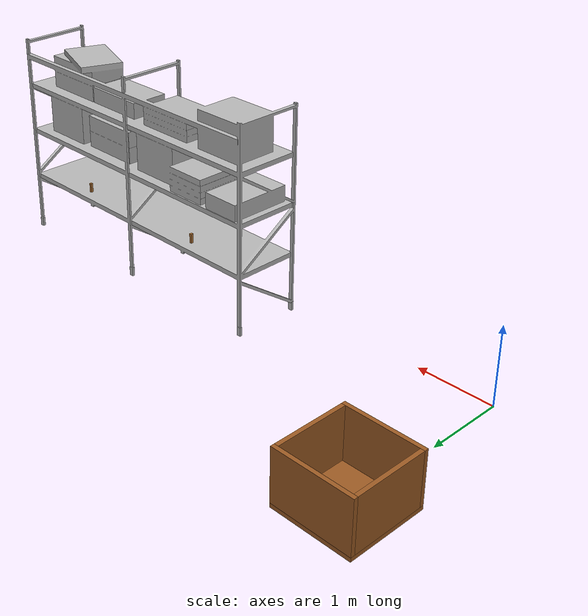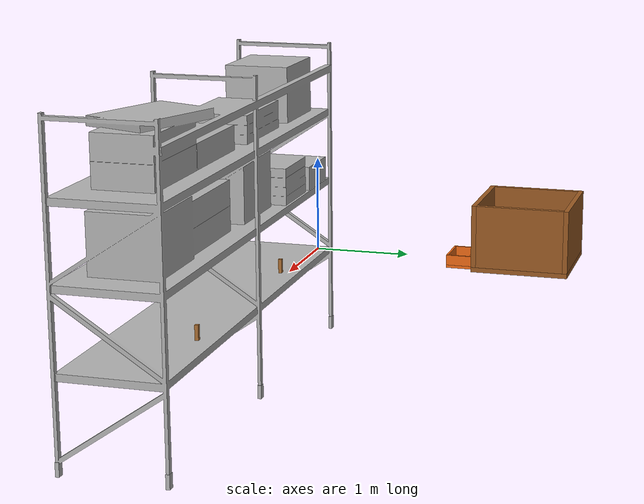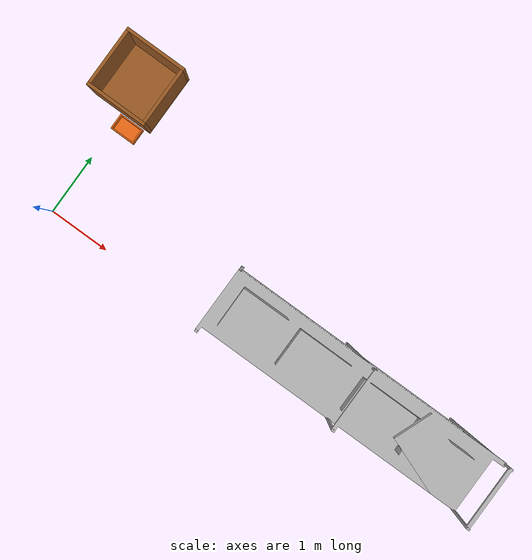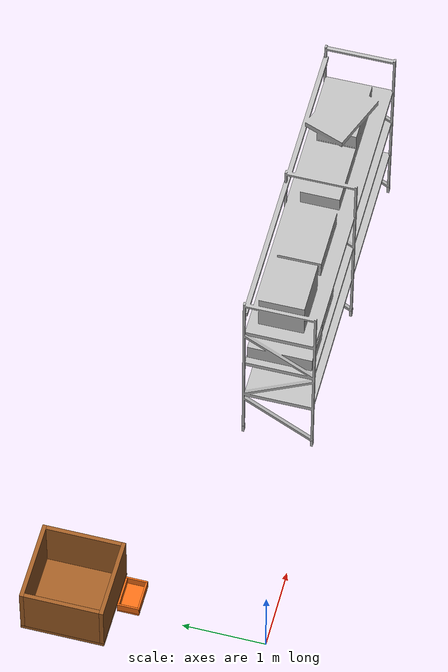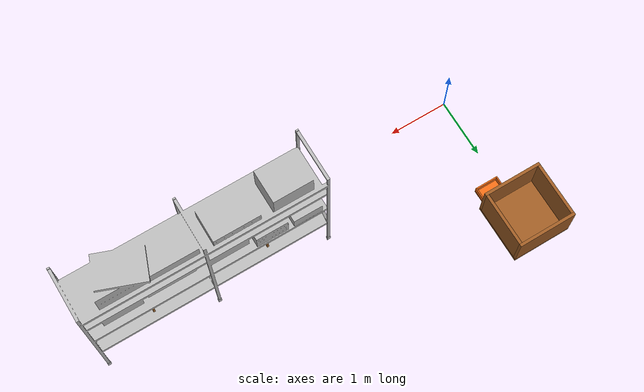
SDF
<sdf version="1.10">
 <world name="small_warehouse">
  <gravity>0 0 -9.8</gravity>
  <physics name="100hz" type="ignored">
   <max_step_size>0.01</max_step_size>
   <real_time_factor>1</real_time_factor>
   <real_time_update_rate>100</real_time_update_rate>
  </physics>
  <plugin name="gz::sim::systems::Physics" filename="gz-sim-physics-system"/>
  <plugin name="gz::sim::systems::UserCommands" filename="gz-sim-user-commands-system"/>
  <plugin name="gz::sim::systems::SceneBroadcaster" filename="gz-sim-scene-broadcaster-system"/>
  <plugin name="gz::sim::systems::Contact" filename="gz-sim-contact-system"/>
  <plugin name="gz::sim::systems::Sensors" filename="gz-sim-sensors-system">
   <render_engine>ogre2</render_engine>
  </plugin>
  <scene><ambient>0.4 0.4 0.4 1</ambient><background>0.7 0.7 0.7 1</background><shadows>true</shadows></scene>
  <model name="warehouse_collision_floor">
   <static>true</static>
   <link name="link">
    <collision name="collision">
     <geometry><plane><normal>0 0 1</normal><size>100 100</size></plane></geometry>
     <surface><friction><ode><mu>1.0</mu><mu2>1.0</mu2></ode></friction></surface>
    </collision>
   </link>
  </model>
  <include>
   <uri>model://aws_robomaker_warehouse_ShelfE_01_manipulation</uri>
   <name>aws_robomaker_warehouse_ShelfE_01_001</name>
   <pose>4.73156 0.57943 0 0 0 0</pose>
  </include>
  <include>
   <uri>model://warehouse_manipulation_box_handheld</uri>
   <name>shelf_e_001_bottom_box_1</name>
   <pose>3.77306 0.85 0.863 0 1.57079632679 0</pose>
  </include>
  <include>
   <uri>model://warehouse_manipulation_box_handheld</uri>
   <name>shelf_e_001_bottom_box_2</name>
   <pose>5.70406 0.85 0.863 0 1.57079632679 0</pose>
  </include>
  <model name="wooden_collection_bin_cluttering_c_031">
   <static>true</static>
   <pose>0 2.301994 0 0 0 0</pose>
   <link name="bin">
    <collision name="bottom_collision">
     <pose>0 0 0.025 0 0 0</pose>
     <geometry><box><size>1.0 1.0 0.05</size></box></geometry>
     <surface><friction><ode><mu>0.8</mu><mu2>0.8</mu2></ode></friction></surface>
    </collision>
    <visual name="bottom_visual">
     <pose>0 0 0.025 0 0 0</pose>
     <geometry><box><size>1.0 1.0 0.05</size></box></geometry>
     <material>
      <ambient>0.38 0.20 0.07 1</ambient>
      <diffuse>0.62 0.36 0.14 1</diffuse>
      <specular>0.04 0.04 0.04 1</specular>
     </material>
    </visual>
    <collision name="left_wall_collision">
     <pose>-0.475 0 0.375 0 0 0</pose>
     <geometry><box><size>0.05 0.9 0.65</size></box></geometry>
    </collision>
    <visual name="left_wall_visual">
     <pose>-0.475 0 0.375 0 0 0</pose>
     <geometry><box><size>0.05 0.9 0.65</size></box></geometry>
     <material><ambient>0.38 0.20 0.07 1</ambient><diffuse>0.62 0.36 0.14 1</diffuse></material>
    </visual>
    <collision name="right_wall_collision">
     <pose>0.475 0 0.375 0 0 0</pose>
     <geometry><box><size>0.05 0.9 0.65</size></box></geometry>
    </collision>
    <visual name="right_wall_visual">
     <pose>0.475 0 0.375 0 0 0</pose>
     <geometry><box><size>0.05 0.9 0.65</size></box></geometry>
     <material><ambient>0.38 0.20 0.07 1</ambient><diffuse>0.62 0.36 0.14 1</diffuse></material>
    </visual>
    <collision name="front_wall_collision">
     <pose>0 -0.475 0.375 0 0 0</pose>
     <geometry><box><size>1.0 0.05 0.65</size></box></geometry>
    </collision>
    <visual name="front_wall_visual">
     <pose>0 -0.475 0.375 0 0 0</pose>
     <geometry><box><size>1.0 0.05 0.65</size></box></geometry>
     <material><ambient>0.38 0.20 0.07 1</ambient><diffuse>0.62 0.36 0.14 1</diffuse></material>
    </visual>
    <collision name="rear_wall_collision">
     <pose>0 0.475 0.375 0 0 0</pose>
     <geometry><box><size>1.0 0.05 0.65</size></box></geometry>
    </collision>
    <visual name="rear_wall_visual">
     <pose>0 0.475 0.375 0 0 0</pose>
     <geometry><box><size>1.0 0.05 0.65</size></box></geometry>
     <material><ambient>0.38 0.20 0.07 1</ambient><diffuse>0.62 0.36 0.14 1</diffuse></material>
    </visual>
   </link>
  </model>
  <model name="task_collection_basket">
   <static>true</static>
   <pose>0.20 1.65 0 0 0 0</pose>
   <link name="basket">
    <collision name="bottom_collision">
     <pose>0 0 0.015 0 0 0</pose>
     <geometry><box><size>0.40 0.26 0.03</size></box></geometry>
    </collision>
    <visual name="bottom_visual">
     <pose>0 0 0.015 0 0 0</pose>
     <geometry><box><size>0.40 0.26 0.03</size></box></geometry>
     <material><ambient>0.75 0.28 0.04 1</ambient><diffuse>0.95 0.42 0.08 1</diffuse></material>
    </visual>
    <collision name="left_wall_collision">
     <pose>-0.19 0 0.075 0 0 0</pose>
     <geometry><box><size>0.02 0.26 0.12</size></box></geometry>
    </collision>
    <visual name="left_wall_visual">
     <pose>-0.19 0 0.075 0 0 0</pose>
     <geometry><box><size>0.02 0.26 0.12</size></box></geometry>
     <material><ambient>0.75 0.28 0.04 1</ambient><diffuse>0.95 0.42 0.08 1</diffuse></material>
    </visual>
    <collision name="right_wall_collision">
     <pose>0.19 0 0.075 0 0 0</pose>
     <geometry><box><size>0.02 0.26 0.12</size></box></geometry>
    </collision>
    <visual name="right_wall_visual">
     <pose>0.19 0 0.075 0 0 0</pose>
     <geometry><box><size>0.02 0.26 0.12</size></box></geometry>
     <material><ambient>0.75 0.28 0.04 1</ambient><diffuse>0.95 0.42 0.08 1</diffuse></material>
    </visual>
    <collision name="front_wall_collision">
     <pose>0 -0.12 0.075 0 0 0</pose>
     <geometry><box><size>0.36 0.02 0.12</size></box></geometry>
    </collision>
    <visual name="front_wall_visual">
     <pose>0 -0.12 0.075 0 0 0</pose>
     <geometry><box><size>0.36 0.02 0.12</size></box></geometry>
     <material><ambient>0.75 0.28 0.04 1</ambient><diffuse>0.95 0.42 0.08 1</diffuse></material>
    </visual>
    <collision name="rear_wall_collision">
     <pose>0 0.12 0.075 0 0 0</pose>
     <geometry><box><size>0.36 0.02 0.12</size></box></geometry>
    </collision>
    <visual name="rear_wall_visual">
     <pose>0 0.12 0.075 0 0 0</pose>
     <geometry><box><size>0.36 0.02 0.12</size></box></geometry>
     <material><ambient>0.75 0.28 0.04 1</ambient><diffuse>0.95 0.42 0.08 1</diffuse></material>
    </visual>
   </link>
  </model>
  <light name="Warehouse_CeilingLight_003" type="point">
   <pose>0 0 9 0 0 0</pose>
   <diffuse>0.5 0.5 0.5 1</diffuse>
   <specular>0.2 0.2 0.2 1</specular>
   <attenuation>
    <range>80</range>
    <constant>0.3</constant>
    <linear>0.01</linear>
    <quadratic>0.001</quadratic>
   </attenuation>
   <direction>0.1 0.1 -1</direction>
  </light>
 </world>
</sdf>

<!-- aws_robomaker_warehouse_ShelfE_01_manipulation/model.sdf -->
<sdf version="1.10">
  <model name="aws_robomaker_warehouse_ShelfE_01_manipulation">
    <static>true</static>
    <link name="rack">
      <visual name="visual">
        <geometry>
          <mesh>
            <uri>file://models/aws_robomaker_warehouse_ShelfE_01/meshes/aws_robomaker_warehouse_ShelfE_01_manipulation_visual.DAE</uri>
          </mesh>
        </geometry>
      </visual>

      <!-- Open primitive collision keeps the shelf surfaces usable for
           manipulation; the original asset uses one solid collision block. -->
      <collision name="lowest_shelf">
        <pose>0 0 0.7682 0 0 0</pose>
        <geometry><box><size>3.8581 0.8330 0.0588</size></box></geometry>
        <surface><friction><ode><mu>0.8</mu><mu2>0.8</mu2></ode></friction></surface>
      </collision>
      <collision name="middle_shelf">
        <pose>0 0 1.4092 0 0 0</pose>
        <geometry><box><size>3.8581 0.8330 0.0588</size></box></geometry>
        <surface><friction><ode><mu>0.8</mu><mu2>0.8</mu2></ode></friction></surface>
      </collision>
      <collision name="upper_shelf">
        <pose>0 0 2.0287 0 0 0</pose>
        <geometry><box><size>3.8581 0.8330 0.0589</size></box></geometry>
        <surface><friction><ode><mu>0.8</mu><mu2>0.8</mu2></ode></friction></surface>
      </collision>

      <collision name="left_front_post">
        <pose>-1.931 0.417 1.306 0 0 0</pose>
        <geometry><box><size>0.056 0.032 2.613</size></box></geometry>
      </collision>
      <collision name="left_rear_post">
        <pose>-1.931 -0.424 1.306 0 0 0</pose>
        <geometry><box><size>0.056 0.032 2.613</size></box></geometry>
      </collision>
      <collision name="center_front_post">
        <pose>0.014 0.417 1.306 0 0 0</pose>
        <geometry><box><size>0.056 0.032 2.613</size></box></geometry>
      </collision>
      <collision name="center_rear_post">
        <pose>0.014 -0.424 1.306 0 0 0</pose>
        <geometry><box><size>0.056 0.032 2.613</size></box></geometry>
      </collision>
      <collision name="right_front_post">
        <pose>1.931 0.417 1.306 0 0 0</pose>
        <geometry><box><size>0.056 0.032 2.613</size></box></geometry>
      </collision>
      <collision name="right_rear_post">
        <pose>1.931 -0.424 1.306 0 0 0</pose>
        <geometry><box><size>0.056 0.032 2.613</size></box></geometry>
      </collision>
    </link>
  </model>
</sdf>

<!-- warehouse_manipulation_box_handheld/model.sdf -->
<sdf version="1.10">
  <model name="warehouse_manipulation_box_handheld">
    <static>false</static>
    <link name="box">
      <velocity_decay>
        <linear>0.8</linear>
        <angular>1.2</angular>
      </velocity_decay>
      <inertial>
        <mass>0.35</mass>
        <inertia>
          <ixx>0.0000525</ixx>
          <iyy>0.00044625</iyy>
          <izz>0.00044625</izz>
          <ixy>0</ixy>
          <ixz>0</ixz>
          <iyz>0</iyz>
        </inertia>
      </inertial>
      <collision name="collision">
        <geometry><box><size>0.12 0.03 0.03</size></box></geometry>
        <surface>
          <friction>
            <ode><mu>3.0</mu><mu2>3.0</mu2></ode>
          </friction>
          <bounce><restitution_coefficient>0</restitution_coefficient></bounce>
          <contact>
            <ode>
              <kp>20000.0</kp>
              <kd>2000.0</kd>
              <max_vel>0.01</max_vel>
              <min_depth>0.002</min_depth>
            </ode>
          </contact>
        </surface>
      </collision>
      <visual name="visual">
        <geometry><box><size>0.12 0.03 0.03</size></box></geometry>
        <material>
          <ambient>0.48 0.30 0.13 1</ambient>
          <diffuse>0.68 0.44 0.20 1</diffuse>
          <specular>0.05 0.05 0.05 1</specular>
        </material>
      </visual>
    </link>
  </model>
</sdf>
